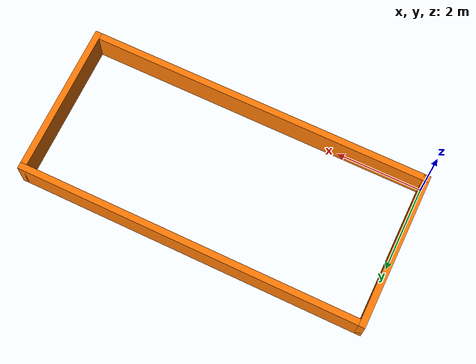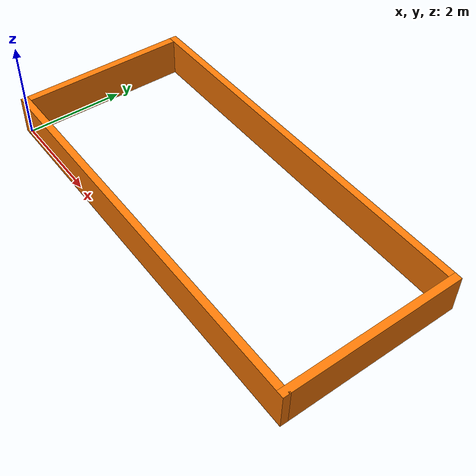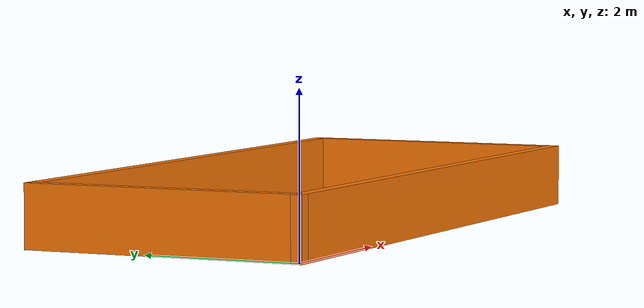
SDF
<?xml version='1.0'?>
<sdf version='1.7'>
  <model name='walls'>
    <pose>4 1.75 0 0 -0 0</pose>
    <link name='Wall_23'>
      <collision name='Wall_23_Collision'>
        <geometry>
          <box>
            <size>3.65 0.15 0.8</size>
          </box>
        </geometry>
        <pose>0 0 0.4 0 -0 0</pose>
      </collision>
      <visual name='Wall_23_Visual'>
        <pose>0 0 0.4 0 -0 0</pose>
        <geometry>
          <box>
            <size>3.65 0.15 0.8</size>
          </box>
        </geometry>
        <material>
          <script>
            <uri>file://media/materials/scripts/gazebo.material</uri>
            <name>Gazebo/Grey</name>
          </script>
          <ambient>0.996078 0.47451 0.0196078 1</ambient>
        </material>
        <meta>
          <layer>0</layer>
        </meta>
      </visual>
      <pose>-4 0 0 0 -0 1.5708</pose>
    </link>
    <link name='Wall_24'>
      <collision name='Wall_24_Collision'>
        <geometry>
          <box>
            <size>8.15 0.15 0.8</size>
          </box>
        </geometry>
        <pose>0 0 0.4 0 -0 0</pose>
      </collision>
      <visual name='Wall_24_Visual'>
        <pose>0 0 0.4 0 -0 0</pose>
        <geometry>
          <box>
            <size>8.15 0.15 0.8</size>
          </box>
        </geometry>
        <material>
          <script>
            <uri>file://media/materials/scripts/gazebo.material</uri>
            <name>Gazebo/Grey</name>
          </script>
          <ambient>0.996078 0.47451 0.0196078 1</ambient>
        </material>
        <meta>
          <layer>0</layer>
        </meta>
      </visual>
      <pose>0 1.75 0 0 -0 0</pose>
    </link>
    <link name='Wall_25'>
      <collision name='Wall_25_Collision'>
        <geometry>
          <box>
            <size>3.65 0.15 0.8</size>
          </box>
        </geometry>
        <pose>0 0 0.4 0 -0 0</pose>
      </collision>
      <visual name='Wall_25_Visual'>
        <pose>0 0 0.4 0 -0 0</pose>
        <geometry>
          <box>
            <size>3.65 0.15 0.8</size>
          </box>
        </geometry>
        <material>
          <script>
            <uri>file://media/materials/scripts/gazebo.material</uri>
            <name>Gazebo/Grey</name>
          </script>
          <ambient>0.996078 0.47451 0.0196078 1</ambient>
        </material>
        <meta>
          <layer>0</layer>
        </meta>
      </visual>
      <pose>4 0 0 0 -0 -1.5708</pose>
    </link>
    <link name='Wall_26'>
      <collision name='Wall_26_Collision'>
        <geometry>
          <box>
            <size>8.15 0.15 0.8</size>
          </box>
        </geometry>
        <pose>0 0 0.4 0 -0 0</pose>
      </collision>
      <visual name='Wall_26_Visual'>
        <pose>0 0 0.4 0 -0 0</pose>
        <geometry>
          <box>
            <size>8.15 0.15 0.8</size>
          </box>
        </geometry>
        <material>
          <script>
            <uri>file://media/materials/scripts/gazebo.material</uri>
            <name>Gazebo/Grey</name>
          </script>
          <ambient>0.996078 0.47451 0.0196078 1</ambient>
        </material>
        <meta>
          <layer>0</layer>
        </meta>
      </visual>
      <pose>0 -1.75 0 0 -0 3.14159</pose>
    </link>
    <static>1</static>
  </model>
</sdf>
